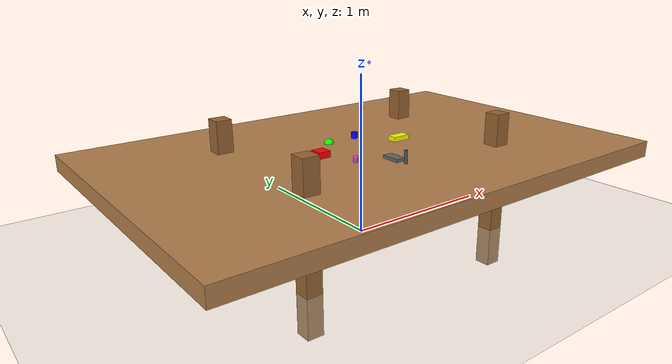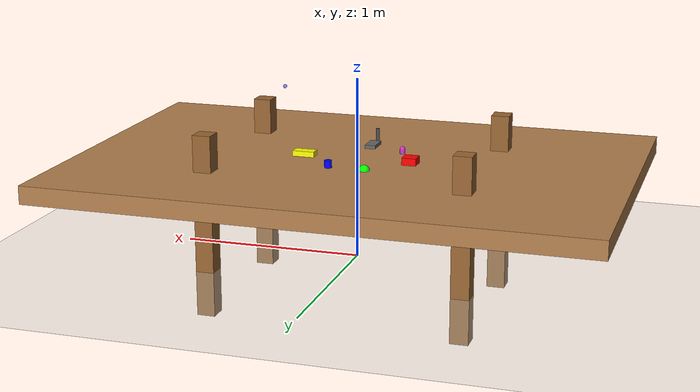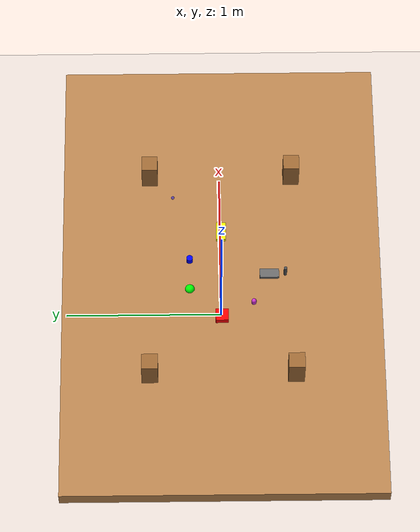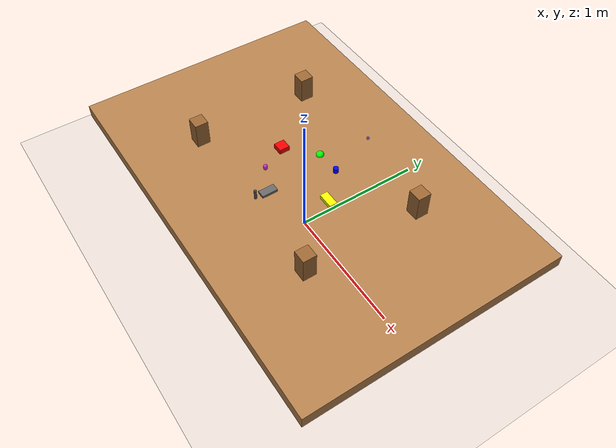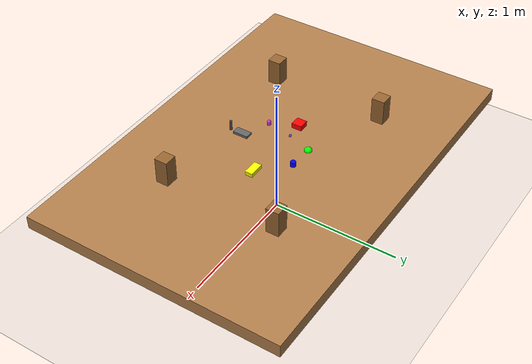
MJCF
<mujoco model="data_collection_arena">
  <compiler angle="radian" meshdir="../meshes"/>

  <option timestep="0.002" gravity="0 0 -9.81" iterations="50" jacobian="dense">
    <flag constraint="enable" contact="enable" energy="enable"/>
    <numeric solver="PGS" tolerance="1e-6" iterations="100"/>
    <visualize>
      <contact force="true" width="2"/>
      <frame width="4"/>
      <actuator width="3"/>
    </visualize>
  </option>

  <default>
    <joint armature="0.001" damping="5" frictionloss="0.05"/>
    <geom rgba="0.6 0.6 0.6 1" margin="0.001" condim="3" friction="0.8 0.01 0.01"/>
  </default>

  <asset>
    <texture name="grid" type="2d" builtin="checker" width="512" height="512" rgb1="0.8 0.8 0.8" rgb2="0.9 0.9 0.9"/>
    <material name="grid_material" texture="grid" texrepeat="10 10" texuniform="true"/>

    <texture name="metal" type="2d" builtin="checker" width="256" height="256" rgb1="0.6 0.6 0.6" rgb2="0.8 0.8 0.8"/>
    <material name="metal_mat" texture="metal" texrepeat="2 2"/>

    <texture name="wood" type="2d" builtin="gradient" width="256" height="256" rgb1="0.7 0.5 0.3" rgb2="0.5 0.3 0.1"/>
    <material name="wood_mat" texture="wood"/>
  </asset>

  <worldbody>
    <!-- Ground plane -->
    <geom name="ground" type="plane" size="5 5 0.1" rgba="0.8 0.8 0.8 1" material="grid_material"/>

    <!-- Lighting -->
    <light name="light1" pos="0 0 3" dir="0 0 -1" diffuse="1 1 1" specular="0.3 0.3 0.3"/>
    <light name="light2" pos="2 2 2" dir="-1 -1 -1" diffuse="0.5 0.5 0.5" specular="0.2 0.2 0.2"/>
    <light name="light3" pos="-2 -2 2" dir="1 1 -1" diffuse="0.5 0.5 0.5" specular="0.2 0.2 0.2"/>

    <!-- Table -->
    <body name="table" pos="0 0 0.5">
      <geom name="table_top" type="box" size="1.5 1.0 0.05" rgba="0.7 0.5 0.3 1" material="wood_mat"/>
      <geom name="table_leg1" type="box" size="0.05 0.05 0.5" pos="-0.7 -0.45 -0.25" rgba="0.6 0.4 0.2 1" material="wood_mat"/>
      <geom name="table_leg2" type="box" size="0.05 0.05 0.5" pos="0.7 -0.45 -0.25" rgba="0.6 0.4 0.2 1" material="wood_mat"/>
      <geom name="table_leg3" type="box" size="0.05 0.05 0.5" pos="-0.7 0.45 -0.25" rgba="0.6 0.4 0.2 1" material="wood_mat"/>
      <geom name="table_leg4" type="box" size="0.05 0.05 0.5" pos="0.7 0.45 -0.25" rgba="0.6 0.4 0.2 1" material="wood_mat"/>
    </body>

    <!-- Dexterous Hand -->
    <body name="hand_root" pos="0.5 0 0.8">
      <freejoint name="hand_freejoint"/>
      <include file="../robots/dexhand.xml"/>
    </body>

    <!-- Objects for manipulation -->
    <body name="object_cube" pos="-0.3 0 0.55">
      <freejoint name="cube_freejoint"/>
      <geom name="cube" type="box" size="0.04 0.04 0.04" rgba="1 0 0 1" density="1000" material="metal_mat"/>
    </body>

    <body name="object_sphere" pos="-0.1 0.2 0.55">
      <freejoint name="sphere_freejoint"/>
      <geom name="sphere" type="sphere" size="0.03" rgba="0 1 0 1" density="1000" material="metal_mat"/>
    </body>

    <body name="object_cylinder" pos="0.1 0.2 0.55">
      <freejoint name="cylinder_freejoint"/>
      <geom name="cylinder" type="cylinder" size="0.02 0.04" rgba="0 0 1 1" density="1000" material="metal_mat"/>
    </body>

    <body name="object_box" pos="0.3 0 0.55">
      <freejoint name="box_freejoint"/>
      <geom name="box" type="box" size="0.06 0.03 0.03" rgba="1 1 0 1" density="1000" material="metal_mat"/>
    </body>

    <body name="object_ring" pos="-0.2 -0.2 0.55">
      <freejoint name="ring_freejoint"/>
      <geom name="ring" type="capsule" size="0.015 0.025" rgba="0.8 0.2 0.8 1" density="800" material="metal_mat"/>
    </body>

    <body name="object_wrench" pos="0.0 -0.3 0.55">
      <freejoint name="wrench_freejoint"/>
      <geom name="wrench_head" type="box" size="0.03 0.06 0.02" pos="0 0 0" rgba="0.4 0.4 0.4 1" material="metal_mat"/>
      <geom name="wrench_handle" type="cylinder" size="0.01 0.08" pos="0 -0.1 0" rgba="0.3 0.3 0.3 1" material="metal_mat"/>
    </body>

    <!-- Workspace markers -->
    <site name="workspace_center" pos="0 0 0.8" size="0.01" rgba="1 0 0 0.5"/>
    <site name="workspace_corner1" pos="-0.3 -0.3 0.5" size="0.01" rgba="0 0 1 0.5"/>
    <site name="workspace_corner2" pos="0.3 0.3 1.0" size="0.01" rgba="0 0 1 0.5"/>

    <!-- Camera -->
    <camera name="main_camera" pos="1.5 1.5 1.5" lookat="0 0 0.7" fovy="60"/>
    <camera name="top_camera" pos="0 0 3" lookat="0 0 0.5" fovy="60"/>
    <camera name="side_camera" pos="2 0 1" lookat="0 0 0.7" fovy="60"/>
  </worldbody>

  <sensor>
    <jointpos name="all_joint_positions"/>
    <jointvel name="all_joint_velocities"/>
    <actuatorforce name="all_torques"/>

    <framepos name="hand_pos" objtype="body" objname="palm"/>
    <framequat name="hand_quat" objtype="body" objname="palm"/>
    <framevel name="hand_vel" objtype="body" objname="palm"/>
    <frameacc name="hand_acc" objtype="body" objname="palm"/>

    <touch name="thumb_touch" objtype="geom" objname="thumb_distal_geom"/>
    <touch name="index_touch" objtype="geom" objname="index_distal_geom"/>
    <touch name="middle_touch" objtype="geom" objname="middle_distal_geom"/>
    <touch name="ring_touch" objtype="geom" objname="ring_distal_geom"/>
    <touch name="pinky_touch" objtype="geom" objname="pinky_distal_geom"/>

    <accelerometer name="palm_imu_acc" objtype="body" objname="palm"/>
    <gyro name="palm_imu_gyro" objtype="body" objname="palm"/>

    <contactforce name="contact_forces"/>
    <contactnum name="contact_count"/>

    <framepos name="cube_pos" objtype="body" objname="object_cube"/>
    <framequat name="cube_quat" objtype="body" objname="object_cube"/>
    <framevel name="cube_vel" objtype="body" objname="object_cube"/>

    <framepos name="sphere_pos" objtype="body" objname="object_sphere"/>
    <framequat name="sphere_quat" objtype="body" objname="object_sphere"/>
    <framevel name="sphere_vel" objtype="body" objname="object_sphere"/>

    <framepos name="cylinder_pos" objtype="body" objname="object_cylinder"/>
    <framequat name="cylinder_quat" objtype="body" objname="object_cylinder"/>
    <framevel name="cylinder_vel" objtype="body" objname="object_cylinder"/>

    <framepos name="box_pos" objtype="body" objname="object_box"/>
    <framequat name="box_quat" objtype="body" objname="object_box"/>
    <framevel name="box_vel" objtype="body" objname="object_box"/>

    <energy name="system_kinetic_energy" type="kinetic"/>
    <energy name="system_potential_energy" type="potential"/>

    <tendonpos name="tendon_positions"/>
    <tendonvel name="tendon_velocities"/>
  </sensor>

  <keyframe>
    <key name="initial_pose" qpos="0 0 0.8 1 0 0 0 0 0 0 0 0 0 0 0 0 0 0 0 0 0 0 0 0 0 0 0" qvel="0 0 0 0 0 0 0 0 0 0 0 0 0 0 0 0 0 0 0 0 0 0 0 0 0 0 0"/>
    <key name="grasp_pose" qpos="0 0 0.8 1 0 0 0 0.5 1.2 1.0 0.5 1.2 1.0 0.8 0.3 1.2 1.0 0.8 0.3 1.2 1.0 0.8 0.4 1.2 1.0 0.8 0" qvel="0 0 0 0 0 0 0 0 0 0 0 0 0 0 0 0 0 0 0 0 0 0 0 0 0 0 0"/>
  </keyframe>
</mujoco>

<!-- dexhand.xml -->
<mujoco model="dexterous_hand">
  <compiler angle="radian" meshdir="../meshes"/>

  <option timestep="0.002" gravity="0 0 -9.81" iterations="50" jacobian="dense">
    <flag constraint="enable" contact="enable" energy="enable"/>
    <numeric solver="PGS" tolerance="1e-6" iterations="50"/>
  </option>

  <default>
    <joint armature="0.001" damping="5" frictionloss="0.05" limited="true"/>
    <geom rgba="0.6 0.6 0.6 1" margin="0.001" condim="3" friction="0.8 0.01 0.01"/>
    <actuator kp="1000" kv="100"/>
  </default>

  <asset>
    <texture name="metal" type="2d" builtin="checker" width="256" height="256" rgb1="0.7 0.7 0.7" rgb2="0.9 0.9 0.9"/>
    <material name="metal_mat" texture="metal" texrepeat="2 2"/>
    <texture name="skin" type="2d" builtin="gradient" width="256" height="256" rgb1="0.8 0.6 0.4" rgb2="0.6 0.4 0.3"/>
    <material name="skin_mat" texture="skin"/>
  </asset>

  <worldbody>
    <body name="palm" pos="0 0 0">
      <geom name="palm_geom" type="box" size="0.08 0.06 0.02" rgba="0.8 0.6 0.4 1" material="skin_mat"/>

      <!-- Thumb -->
      <body name="thumb_base" pos="0.06 0.03 0">
        <joint name="thumb_abd" type="hinge" axis="0 0 1" range="-0.8 0.8" stiffness="500"/>
        <geom name="thumb_base_geom" type="capsule" size="0.015 0.025" rgba="0.7 0.5 0.3 1" material="skin_mat"/>

        <body name="thumb_proximal" pos="0 0 -0.025">
          <joint name="thumb_flex1" type="hinge" axis="1 0 0" range="0 1.5" stiffness="500"/>
          <geom name="thumb_proximal_geom" type="capsule" size="0.012 0.025" rgba="0.7 0.5 0.3 1" material="skin_mat"/>

          <body name="thumb_distal" pos="0 0 -0.025">
            <joint name="thumb_flex2" type="hinge" axis="1 0 0" range="0 1.8" stiffness="500"/>
            <geom name="thumb_distal_geom" type="sphere" size="0.015" rgba="0.9 0.7 0.5 1" material="skin_mat"/>
          </body>
        </body>
      </body>

      <!-- Index Finger -->
      <body name="index_base" pos="0.06 -0.005 0">
        <joint name="index_abd" type="hinge" axis="0 0 1" range="-0.5 0.5" stiffness="500"/>
        <geom name="index_base_geom" type="capsule" size="0.012 0.02" rgba="0.7 0.5 0.3 1" material="skin_mat"/>

        <body name="index_proximal" pos="0 0 -0.02">
          <joint name="index_flex1" type="hinge" axis="1 0 0" range="0 1.8" stiffness="500"/>
          <geom name="index_proximal_geom" type="capsule" size="0.01 0.025" rgba="0.7 0.5 0.3 1" material="skin_mat"/>

          <body name="index_middle" pos="0 0 -0.025">
            <joint name="index_flex2" type="hinge" axis="1 0 0" range="0 1.8" stiffness="500"/>
            <geom name="index_middle_geom" type="capsule" size="0.008 0.022" rgba="0.7 0.5 0.3 1" material="skin_mat"/>

            <body name="index_distal" pos="0 0 -0.022">
              <joint name="index_flex3" type="hinge" axis="1 0 0" range="0 1.5" stiffness="500"/>
              <geom name="index_distal_geom" type="sphere" size="0.012" rgba="0.9 0.7 0.5 1" material="skin_mat"/>
            </body>
          </body>
        </body>
      </body>

      <!-- Middle Finger -->
      <body name="middle_base" pos="0.06 -0.02 0">
        <joint name="middle_abd" type="hinge" axis="0 0 1" range="-0.3 0.3" stiffness="500"/>
        <geom name="middle_base_geom" type="capsule" size="0.012 0.02" rgba="0.7 0.5 0.3 1" material="skin_mat"/>

        <body name="middle_proximal" pos="0 0 -0.02">
          <joint name="middle_flex1" type="hinge" axis="1 0 0" range="0 1.8" stiffness="500"/>
          <geom name="middle_proximal_geom" type="capsule" size="0.01 0.027" rgba="0.7 0.5 0.3 1" material="skin_mat"/>

          <body name="middle_middle" pos="0 0 -0.027">
            <joint name="middle_flex2" type="hinge" axis="1 0 0" range="0 1.8" stiffness="500"/>
            <geom name="middle_middle_geom" type="capsule" size="0.008 0.024" rgba="0.7 0.5 0.3 1" material="skin_mat"/>

            <body name="middle_distal" pos="0 0 -0.024">
              <joint name="middle_flex3" type="hinge" axis="1 0 0" range="0 1.5" stiffness="500"/>
              <geom name="middle_distal_geom" type="sphere" size="0.012" rgba="0.9 0.7 0.5 1" material="skin_mat"/>
            </body>
          </body>
        </body>
      </body>

      <!-- Ring Finger -->
      <body name="ring_base" pos="0.06 -0.035 0">
        <joint name="ring_abd" type="hinge" axis="0 0 1" range="-0.3 0.3" stiffness="500"/>
        <geom name="ring_base_geom" type="capsule" size="0.012 0.02" rgba="0.7 0.5 0.3 1" material="skin_mat"/>

        <body name="ring_proximal" pos="0 0 -0.02">
          <joint name="ring_flex1" type="hinge" axis="1 0 0" range="0 1.8" stiffness="500"/>
          <geom name="ring_proximal_geom" type="capsule" size="0.01 0.025" rgba="0.7 0.5 0.3 1" material="skin_mat"/>

          <body name="ring_middle" pos="0 0 -0.025">
            <joint name="ring_flex2" type="hinge" axis="1 0 0" range="0 1.8" stiffness="500"/>
            <geom name="ring_middle_geom" type="capsule" size="0.008 0.022" rgba="0.7 0.5 0.3 1" material="skin_mat"/>

            <body name="ring_distal" pos="0 0 -0.022">
              <joint name="ring_flex3" type="hinge" axis="1 0 0" range="0 1.5" stiffness="500"/>
              <geom name="ring_distal_geom" type="sphere" size="0.011" rgba="0.9 0.7 0.5 1" material="skin_mat"/>
            </body>
          </body>
        </body>
      </body>

      <!-- Pinky Finger -->
      <body name="pinky_base" pos="0.06 -0.05 0">
        <joint name="pinky_abd" type="hinge" axis="0 0 1" range="-0.6 0.2" stiffness="500"/>
        <geom name="pinky_base_geom" type="capsule" size="0.01 0.018" rgba="0.7 0.5 0.3 1" material="skin_mat"/>

        <body name="pinky_proximal" pos="0 0 -0.018">
          <joint name="pinky_flex1" type="hinge" axis="1 0 0" range="0 1.8" stiffness="500"/>
          <geom name="pinky_proximal_geom" type="capsule" size="0.009 0.022" rgba="0.7 0.5 0.3 1" material="skin_mat"/>

          <body name="pinky_middle" pos="0 0 -0.022">
            <joint name="pinky_flex2" type="hinge" axis="1 0 0" range="0 1.8" stiffness="500"/>
            <geom name="pinky_middle_geom" type="capsule" size="0.007 0.02" rgba="0.7 0.5 0.3 1" material="skin_mat"/>

            <body name="pinky_distal" pos="0 0 -0.02">
              <joint name="pinky_flex3" type="hinge" axis="1 0 0" range="0 1.5" stiffness="500"/>
              <geom name="pinky_distal_geom" type="sphere" size="0.01" rgba="0.9 0.7 0.5 1" material="skin_mat"/>
            </body>
          </body>
        </body>
      </body>
    </body>
  </worldbody>

  <actuator>
    <position name="thumb_abd_motor" joint="thumb_abd" kp="1000" kv="100"/>
    <position name="thumb_flex1_motor" joint="thumb_flex1" kp="1000" kv="100"/>
    <position name="thumb_flex2_motor" joint="thumb_flex2" kp="1000" kv="100"/>

    <position name="index_abd_motor" joint="index_abd" kp="1000" kv="100"/>
    <position name="index_flex1_motor" joint="index_flex1" kp="1000" kv="100"/>
    <position name="index_flex2_motor" joint="index_flex2" kp="1000" kv="100"/>
    <position name="index_flex3_motor" joint="index_flex3" kp="1000" kv="100"/>

    <position name="middle_abd_motor" joint="middle_abd" kp="1000" kv="100"/>
    <position name="middle_flex1_motor" joint="middle_flex1" kp="1000" kv="100"/>
    <position name="middle_flex2_motor" joint="middle_flex2" kp="1000" kv="100"/>
    <position name="middle_flex3_motor" joint="middle_flex3" kp="1000" kv="100"/>

    <position name="ring_abd_motor" joint="ring_abd" kp="1000" kv="100"/>
    <position name="ring_flex1_motor" joint="ring_flex1" kp="1000" kv="100"/>
    <position name="ring_flex2_motor" joint="ring_flex2" kp="1000" kv="100"/>
    <position name="ring_flex3_motor" joint="ring_flex3" kp="1000" kv="100"/>

    <position name="pinky_abd_motor" joint="pinky_abd" kp="1000" kv="100"/>
    <position name="pinky_flex1_motor" joint="pinky_flex1" kp="1000" kv="100"/>
    <position name="pinky_flex2_motor" joint="pinky_flex2" kp="1000" kv="100"/>
    <position name="pinky_flex3_motor" joint="pinky_flex3" kp="1000" kv="100"/>
  </actuator>

  <sensor>
    <jointpos name="joint_positions"/>
    <jointvel name="joint_velocities"/>
    <actuatorforce name="joint_torques"/>

    <framepos name="palm_pos" objtype="body" objname="palm"/>
    <framequat name="palm_quat" objtype="body" objname="palm"/>
    <framevel name="palm_vel" objtype="body" objname="palm"/>
    <frameacc name="palm_acc" objtype="body" objname="palm"/>

    <touch name="thumb_touch" objtype="geom" objname="thumb_distal_geom"/>
    <touch name="index_touch" objtype="geom" objname="index_distal_geom"/>
    <touch name="middle_touch" objtype="geom" objname="middle_distal_geom"/>
    <touch name="ring_touch" objtype="geom" objname="ring_distal_geom"/>
    <touch name="pinky_touch" objtype="geom" objname="pinky_distal_geom"/>

    <accelerometer name="palm_imu_acc" objtype="body" objname="palm"/>
    <gyro name="palm_imu_gyro" objtype="body" objname="palm"/>

    <contactforce name="contact_forces"/>
    <contactnum name="contact_count"/>

    <tendonpos name="tendon_positions"/>
    <tendonvel name="tendon_velocities"/>

    <energy name="system_energy"/>
  </sensor>

  <tendon>
    <spatial name="thumb_tendon" limited="true" range="0 0.1">
      <site site="thumb_tendon_site"/>
      <joint joint="thumb_flex1"/>
      <joint joint="thumb_flex2"/>
    </spatial>
  </tendon>

  <equality>
    <tendon name="thumb_tendon_eq" tendon="thumb_tendon"/>
  </equality>
</mujoco>
